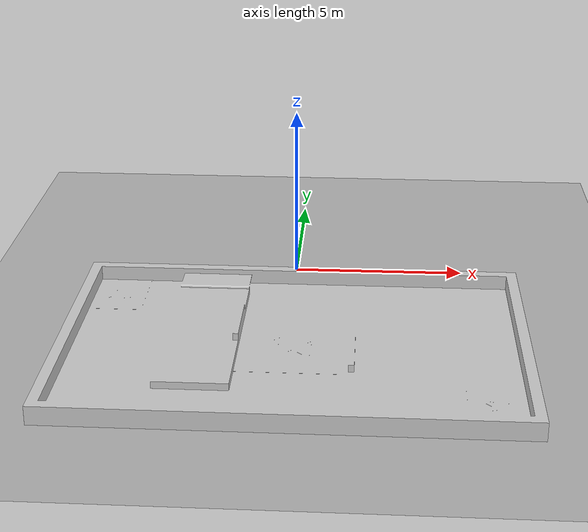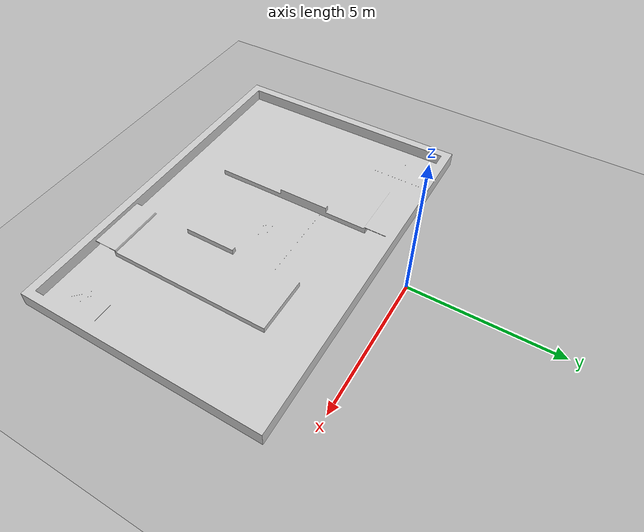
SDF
<?xml version="1.0" ?>
<sdf version='1.7'>
  <world name='RMUL27'>
    <light name='sun' type='directional'>
      <cast_shadows>1</cast_shadows>
      <pose>0 0 10 0 -0 0</pose>
      <diffuse>0.8 0.8 0.8 1</diffuse>
      <specular>0.2 0.2 0.2 1</specular>
      <attenuation>
        <range>1000</range>
        <constant>0.9</constant>
        <linear>0.01</linear>
        <quadratic>0.001</quadratic>
      </attenuation>
      <direction>-0.5 0.1 -0.9</direction>
      <spot>
        <inner_angle>0</inner_angle>
        <outer_angle>0</outer_angle>
        <falloff>0</falloff>
      </spot>
    </light>

    <model name='ground_plane'>
      <static>1</static>
      <link name='link'>
        <collision name='collision'>
          <geometry>
            <plane>
              <normal>0 0 1</normal>
              <size>100 100</size>
            </plane>
          </geometry>
          <surface>
            <friction>
              <ode>
                <mu>100</mu>
                <mu2>50</mu2>
              </ode>
              <torsional>
                <ode/>
              </torsional>
            </friction>
            <contact>
              <ode/>
            </contact>
            <bounce/>
          </surface>
          <max_contacts>10</max_contacts>
        </collision>
        <visual name='visual'>
          <cast_shadows>0</cast_shadows>
          <geometry>
            <plane>
              <normal>0 0 1</normal>
              <size>100 100</size>
            </plane>
          </geometry>
          <material>
            <ambient>0.5 0.5 0.5 1</ambient>
            <diffuse>0.7 0.7 0.7 1</diffuse>
          </material>
        </visual>
        <self_collide>0</self_collide>
        <enable_wind>0</enable_wind>
        <kinematic>0</kinematic>
      </link>
    </model>

    <include>
      <uri>model://RMUL27_world</uri>
      <pose>1.221072 -9.6 0.005 3.14159265 0 0</pose>
      <name>RMUL27_world</name>
    </include>

    <gui fullscreen='0'>
      <camera name='user_camera'>
        <!-- 用户之前保存的视角（/home/cola/RMUL27.world 原样），场地足迹没变，视角仍适用。 -->
        <pose>25.7396 -2.5426 26.8185 0 0.940001 3.00959</pose>
        <view_controller>orbit</view_controller>
        <projection_type>perspective</projection_type>
      </camera>
    </gui>

    <gravity>0 0 -9.8</gravity>
    <magnetic_field>6e-06 2.3e-05 -4.2e-05</magnetic_field>
    <atmosphere type='adiabatic'/>
    <physics type='ode'>
      <max_step_size>0.001</max_step_size>
      <real_time_factor>1</real_time_factor>
      <real_time_update_rate>1000</real_time_update_rate>
    </physics>
    <scene>
      <ambient>0.4 0.4 0.4 1</ambient>
      <background>0.7 0.7 0.7 1</background>
      <shadows>1</shadows>
    </scene>
    <audio>
      <device>default</device>
    </audio>
    <wind/>
    <spherical_coordinates>
      <surface_model>EARTH_WGS84</surface_model>
      <latitude_deg>0</latitude_deg>
      <longitude_deg>0</longitude_deg>
      <elevation>0</elevation>
      <heading_deg>0</heading_deg>
    </spherical_coordinates>
  </world>
</sdf>

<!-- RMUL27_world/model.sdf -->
<sdf version="1.6">
  <model name="RMUL27_world">
    <static>true</static>

    <link name="base_link">
      <pose>0 0 0.320105 0 0 0</pose>

      <visual name="visual">
        <geometry>
          <mesh>
            <uri>model://RMUL27_world/meshes/base_link.STL</uri>
          </mesh>
        </geometry>
        <material>
          <lighting>1</lighting>
          <ambient>0.6 0.6 0.6 1</ambient>
          <diffuse>0.8 0.8 0.8 1</diffuse>
          <specular>0.1 0.1 0.1 1</specular>
        </material>
        <cast_shadows>true</cast_shadows>
      </visual>

      <collision name="collision">
        <geometry>
          <mesh>
            <uri>model://RMUL27_world/meshes/base_link.STL</uri>
          </mesh>
        </geometry>
        <surface>
          <friction>
            <ode>
              <mu>1.0</mu>
              <mu2>1.0</mu2>
            </ode>
          </friction>
          <contact>
            <ode>
              <max_vel>0.1</max_vel>
              <min_depth>0.001</min_depth>
            </ode>
          </contact>
        </surface>
        <laser_retro>0</laser_retro>
      </collision>
    </link>
  </model>
</sdf>
